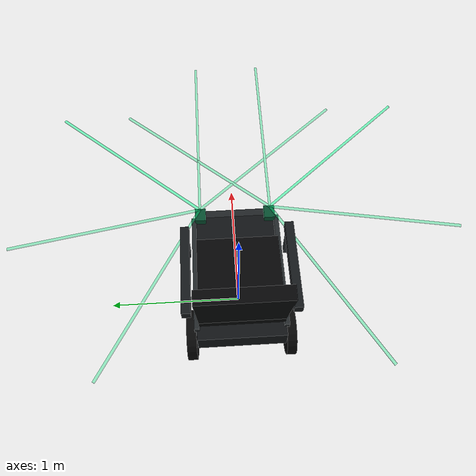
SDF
<?xml version="1.0"?>
<sdf version="1.10">
  <model name="smart_wheelchair">
    <pose>0 0 0 0 0 0</pose>

    <link name="base_link">
      <inertial>
        <mass>65.0</mass>
        <inertia>
          <ixx>3.0</ixx><ixy>0</ixy><ixz>0</ixz>
          <iyy>4.0</iyy><iyz>0</iyz>
          <izz>3.0</izz>
        </inertia>
      </inertial>

      <collision name="base_collision">
        <pose>0 0 0.42 0 0 0</pose>
        <geometry><box><size>0.95 0.62 0.18</size></box></geometry>
      </collision>
      <visual name="base_visual">
        <pose>0 0 0.42 0 0 0</pose>
        <geometry><box><size>0.95 0.62 0.18</size></box></geometry>
        <material><ambient>0.06 0.07 0.08 1</ambient><diffuse>0.06 0.07 0.08 1</diffuse></material>
      </visual>

      <visual name="seat_visual">
        <pose>-0.12 0 0.68 0 0 0</pose>
        <geometry><box><size>0.60 0.58 0.09</size></box></geometry>
        <material><ambient>0.015 0.017 0.02 1</ambient><diffuse>0.015 0.017 0.02 1</diffuse></material>
      </visual>

      <visual name="backrest_visual">
        <pose>-0.43 0 1.00 0 -0.18 0</pose>
        <geometry><box><size>0.09 0.58 0.70</size></box></geometry>
        <material><ambient>0.015 0.017 0.02 1</ambient><diffuse>0.015 0.017 0.02 1</diffuse></material>
      </visual>

      <visual name="left_armrest_visual">
        <pose>-0.10 0.36 0.83 0 0 0</pose>
        <geometry><box><size>0.62 0.06 0.08</size></box></geometry>
        <material><ambient>0.08 0.09 0.10 1</ambient><diffuse>0.08 0.09 0.10 1</diffuse></material>
      </visual>

      <visual name="right_armrest_visual">
        <pose>-0.10 -0.36 0.83 0 0 0</pose>
        <geometry><box><size>0.62 0.06 0.08</size></box></geometry>
        <material><ambient>0.08 0.09 0.10 1</ambient><diffuse>0.08 0.09 0.10 1</diffuse></material>
      </visual>

      <visual name="left_arm_support_front_visual">
        <pose>0.16 0.36 0.67 0 0 0</pose>
        <geometry><box><size>0.045 0.045 0.28</size></box></geometry>
        <material><ambient>0.16 0.18 0.19 1</ambient><diffuse>0.16 0.18 0.19 1</diffuse></material>
      </visual>

      <visual name="right_arm_support_front_visual">
        <pose>0.16 -0.36 0.67 0 0 0</pose>
        <geometry><box><size>0.045 0.045 0.28</size></box></geometry>
        <material><ambient>0.16 0.18 0.19 1</ambient><diffuse>0.16 0.18 0.19 1</diffuse></material>
      </visual>

      <visual name="footplate_visual">
        <pose>0.48 0 0.30 0 0 0</pose>
        <geometry><box><size>0.32 0.48 0.045</size></box></geometry>
        <material><ambient>0.12 0.13 0.14 1</ambient><diffuse>0.12 0.13 0.14 1</diffuse></material>
      </visual>

      <visual name="left_frame_rail_visual">
        <pose>0.02 0.31 0.52 0 0 0</pose>
        <geometry><box><size>0.86 0.035 0.06</size></box></geometry>
        <material><ambient>0.13 0.15 0.16 1</ambient><diffuse>0.13 0.15 0.16 1</diffuse></material>
      </visual>

      <visual name="right_frame_rail_visual">
        <pose>0.02 -0.31 0.52 0 0 0</pose>
        <geometry><box><size>0.86 0.035 0.06</size></box></geometry>
        <material><ambient>0.13 0.15 0.16 1</ambient><diffuse>0.13 0.15 0.16 1</diffuse></material>
      </visual>

      <visual name="battery_visual">
        <pose>-0.15 0 0.27 0 0 0</pose>
        <geometry><box><size>0.42 0.44 0.12</size></box></geometry>
        <material><ambient>0.08 0.09 0.10 1</ambient><diffuse>0.08 0.09 0.10 1</diffuse></material>
      </visual>

      <visual name="left_lidar_body_visual">
        <pose>0.46 0.26 0.56 0 0 0</pose>
        <geometry><box><size>0.10 0.08 0.055</size></box></geometry>
        <material><ambient>0.02 0.30 0.18 1</ambient><diffuse>0.02 0.30 0.18 1</diffuse></material>
      </visual>

      <visual name="right_lidar_body_visual">
        <pose>0.46 -0.26 0.56 0 0 0</pose>
        <geometry><box><size>0.10 0.08 0.055</size></box></geometry>
        <material><ambient>0.02 0.30 0.18 1</ambient><diffuse>0.02 0.30 0.18 1</diffuse></material>
      </visual>

      <visual name="left_lidar_ray_minus50_visual">
        <pose>0.910 -0.276 0.660 0 0 -0.8727</pose>
        <geometry><box><size>1.40 0.018 0.012</size></box></geometry>
        <material><ambient>0.0 0.9 0.48 0.38</ambient><diffuse>0.0 0.9 0.48 0.38</diffuse></material>
      </visual>

      <visual name="left_lidar_ray_0_visual">
        <pose>1.160 0.260 0.660 0 0 0.0000</pose>
        <geometry><box><size>1.40 0.018 0.012</size></box></geometry>
        <material><ambient>0.0 0.9 0.48 0.38</ambient><diffuse>0.0 0.9 0.48 0.38</diffuse></material>
      </visual>

      <visual name="left_lidar_ray_50_visual">
        <pose>0.910 0.796 0.660 0 0 0.8727</pose>
        <geometry><box><size>1.40 0.018 0.012</size></box></geometry>
        <material><ambient>0.0 1.0 0.55 0.50</ambient><diffuse>0.0 1.0 0.55 0.50</diffuse></material>
      </visual>

      <visual name="left_lidar_ray_100_visual">
        <pose>0.338 0.949 0.660 0 0 1.7453</pose>
        <geometry><box><size>1.40 0.018 0.012</size></box></geometry>
        <material><ambient>0.0 0.9 0.48 0.38</ambient><diffuse>0.0 0.9 0.48 0.38</diffuse></material>
      </visual>

      <visual name="left_lidar_ray_150_visual">
        <pose>-0.146 0.610 0.660 0 0 2.6180</pose>
        <geometry><box><size>1.40 0.018 0.012</size></box></geometry>
        <material><ambient>0.0 0.9 0.48 0.38</ambient><diffuse>0.0 0.9 0.48 0.38</diffuse></material>
      </visual>

      <visual name="right_lidar_ray_minus150_visual">
        <pose>-0.146 -0.610 0.660 0 0 -2.6180</pose>
        <geometry><box><size>1.40 0.018 0.012</size></box></geometry>
        <material><ambient>0.0 0.9 0.48 0.38</ambient><diffuse>0.0 0.9 0.48 0.38</diffuse></material>
      </visual>

      <visual name="right_lidar_ray_minus100_visual">
        <pose>0.338 -0.949 0.660 0 0 -1.7453</pose>
        <geometry><box><size>1.40 0.018 0.012</size></box></geometry>
        <material><ambient>0.0 0.9 0.48 0.38</ambient><diffuse>0.0 0.9 0.48 0.38</diffuse></material>
      </visual>

      <visual name="right_lidar_ray_minus50_visual">
        <pose>0.910 -0.796 0.660 0 0 -0.8727</pose>
        <geometry><box><size>1.40 0.018 0.012</size></box></geometry>
        <material><ambient>0.0 1.0 0.55 0.50</ambient><diffuse>0.0 1.0 0.55 0.50</diffuse></material>
      </visual>

      <visual name="right_lidar_ray_0_visual">
        <pose>1.160 -0.260 0.660 0 0 0.0000</pose>
        <geometry><box><size>1.40 0.018 0.012</size></box></geometry>
        <material><ambient>0.0 0.9 0.48 0.38</ambient><diffuse>0.0 0.9 0.48 0.38</diffuse></material>
      </visual>

      <visual name="right_lidar_ray_50_visual">
        <pose>0.910 0.276 0.660 0 0 0.8727</pose>
        <geometry><box><size>1.40 0.018 0.012</size></box></geometry>
        <material><ambient>0.0 0.9 0.48 0.38</ambient><diffuse>0.0 0.9 0.48 0.38</diffuse></material>
      </visual>

      <sensor name="left_lidar" type="gpu_lidar">
        <pose>0.46 0.26 0.56 0 0 0</pose>
        <topic>/scan_left</topic>
        <update_rate>10</update_rate>
        <lidar>
          <scan>
            <horizontal>
              <samples>401</samples>
              <resolution>1</resolution>
              <min_angle>-0.87266</min_angle>
              <max_angle>2.61799</max_angle>
            </horizontal>
          </scan>
          <range>
            <min>0.08</min>
            <max>5.0</max>
            <resolution>0.01</resolution>
          </range>
        </lidar>
        <always_on>true</always_on>
        <visualize>true</visualize>
      </sensor>

      <sensor name="right_lidar" type="gpu_lidar">
        <pose>0.46 -0.26 0.56 0 0 0</pose>
        <topic>/scan_right</topic>
        <update_rate>10</update_rate>
        <lidar>
          <scan>
            <horizontal>
              <samples>401</samples>
              <resolution>1</resolution>
              <min_angle>-2.61799</min_angle>
              <max_angle>0.87266</max_angle>
            </horizontal>
          </scan>
          <range>
            <min>0.08</min>
            <max>5.0</max>
            <resolution>0.01</resolution>
          </range>
        </lidar>
        <always_on>true</always_on>
        <visualize>true</visualize>
      </sensor>

      <sensor name="rear_camera" type="camera">
        <pose>-0.58 0 0.72 0 0.60 3.1416</pose>
        <topic>/camera/rear/image</topic>
        <update_rate>15</update_rate>
        <camera>
          <camera_info_topic>/camera/rear/camera_info</camera_info_topic>
          <horizontal_fov>2.094</horizontal_fov>
          <image>
            <width>640</width>
            <height>360</height>
            <format>R8G8B8</format>
          </image>
          <clip>
            <near>0.05</near>
            <far>10.0</far>
          </clip>
        </camera>
        <always_on>true</always_on>
      </sensor>
    </link>

    <link name="left_rear_wheel">
      <pose>-0.33 0.36 0.18 0 0 0</pose>
      <inertial><mass>2.0</mass><inertia><ixx>0.02</ixx><iyy>0.02</iyy><izz>0.02</izz></inertia></inertial>
      <collision name="collision"><pose>0 0 0 1.5708 0 0</pose><geometry><cylinder><radius>0.18</radius><length>0.07</length></cylinder></geometry></collision>
      <visual name="visual"><pose>0 0 0 1.5708 0 0</pose><geometry><cylinder><radius>0.18</radius><length>0.07</length></cylinder></geometry><material><ambient>0.03 0.03 0.03 1</ambient><diffuse>0.03 0.03 0.03 1</diffuse></material></visual>
      <visual name="left_rear_hub_visual"><pose>0 0 0 1.5708 0 0</pose><geometry><cylinder><radius>0.09</radius><length>0.08</length></cylinder></geometry><material><ambient>0.55 0.58 0.60 1</ambient><diffuse>0.55 0.58 0.60 1</diffuse></material></visual>
    </link>

    <link name="right_rear_wheel">
      <pose>-0.33 -0.36 0.18 0 0 0</pose>
      <inertial><mass>2.0</mass><inertia><ixx>0.02</ixx><iyy>0.02</iyy><izz>0.02</izz></inertia></inertial>
      <collision name="collision"><pose>0 0 0 1.5708 0 0</pose><geometry><cylinder><radius>0.18</radius><length>0.07</length></cylinder></geometry></collision>
      <visual name="visual"><pose>0 0 0 1.5708 0 0</pose><geometry><cylinder><radius>0.18</radius><length>0.07</length></cylinder></geometry><material><ambient>0.03 0.03 0.03 1</ambient><diffuse>0.03 0.03 0.03 1</diffuse></material></visual>
      <visual name="right_rear_hub_visual"><pose>0 0 0 1.5708 0 0</pose><geometry><cylinder><radius>0.09</radius><length>0.08</length></cylinder></geometry><material><ambient>0.55 0.58 0.60 1</ambient><diffuse>0.55 0.58 0.60 1</diffuse></material></visual>
    </link>

    <link name="left_front_caster">
      <pose>0.38 0.25 0.08 0 0 0</pose>
      <inertial><mass>0.6</mass><inertia><ixx>0.002</ixx><iyy>0.002</iyy><izz>0.002</izz></inertia></inertial>
      <collision name="collision"><geometry><sphere><radius>0.08</radius></sphere></geometry></collision>
      <visual name="visual"><geometry><sphere><radius>0.08</radius></sphere></geometry><material><ambient>0.05 0.05 0.055 1</ambient><diffuse>0.05 0.05 0.055 1</diffuse></material></visual>
      <visual name="left_caster_fork_visual"><pose>0 0 0.11 0 0 0</pose><geometry><box><size>0.05 0.12 0.12</size></box></geometry><material><ambient>0.55 0.58 0.60 1</ambient><diffuse>0.55 0.58 0.60 1</diffuse></material></visual>
    </link>

    <link name="right_front_caster">
      <pose>0.38 -0.25 0.08 0 0 0</pose>
      <inertial><mass>0.6</mass><inertia><ixx>0.002</ixx><iyy>0.002</iyy><izz>0.002</izz></inertia></inertial>
      <collision name="collision"><geometry><sphere><radius>0.08</radius></sphere></geometry></collision>
      <visual name="visual"><geometry><sphere><radius>0.08</radius></sphere></geometry><material><ambient>0.05 0.05 0.055 1</ambient><diffuse>0.05 0.05 0.055 1</diffuse></material></visual>
      <visual name="right_caster_fork_visual"><pose>0 0 0.11 0 0 0</pose><geometry><box><size>0.05 0.12 0.12</size></box></geometry><material><ambient>0.55 0.58 0.60 1</ambient><diffuse>0.55 0.58 0.60 1</diffuse></material></visual>
    </link>

    <joint name="left_rear_wheel_joint" type="revolute">
      <parent>base_link</parent>
      <child>left_rear_wheel</child>
      <axis>
        <xyz>0 1 0</xyz>
        <limit><lower>-1e16</lower><upper>1e16</upper></limit>
      </axis>
    </joint>

    <joint name="right_rear_wheel_joint" type="revolute">
      <parent>base_link</parent>
      <child>right_rear_wheel</child>
      <axis>
        <xyz>0 1 0</xyz>
        <limit><lower>-1e16</lower><upper>1e16</upper></limit>
      </axis>
    </joint>

    <joint name="left_front_caster_joint" type="ball">
      <parent>base_link</parent>
      <child>left_front_caster</child>
    </joint>

    <joint name="right_front_caster_joint" type="ball">
      <parent>base_link</parent>
      <child>right_front_caster</child>
    </joint>

    <plugin filename="gz-sim-diff-drive-system" name="gz::sim::systems::DiffDrive">
      <left_joint>left_rear_wheel_joint</left_joint>
      <right_joint>right_rear_wheel_joint</right_joint>
      <wheel_separation>0.72</wheel_separation>
      <wheel_radius>0.18</wheel_radius>
      <topic>/cmd_vel</topic>
      <odom_topic>/odom</odom_topic>
      <frame_id>odom</frame_id>
      <child_frame_id>base_link</child_frame_id>
      <max_linear_acceleration>0.6</max_linear_acceleration>
      <max_angular_acceleration>1.2</max_angular_acceleration>
    </plugin>

    <plugin filename="libSmartWheelChairTrajectoryPreview.so" name="smart_wheelchair_gazebo::TrajectoryPreviewSystem">
      <cmd_topic>/cmd_vel_raw</cmd_topic>
      <filtered_cmd_topic>/cmd_vel</filtered_cmd_topic>
      <prediction_seconds>3.0</prediction_seconds>
      <step_seconds>0.3</step_seconds>
      <command_timeout_s>0.5</command_timeout_s>
      <rear_axle_x_m>-0.33</rear_axle_x_m>
      <wheel_separation_m>0.72</wheel_separation_m>
      <z_m>0.18</z_m>
    </plugin>
  </model>
</sdf>
